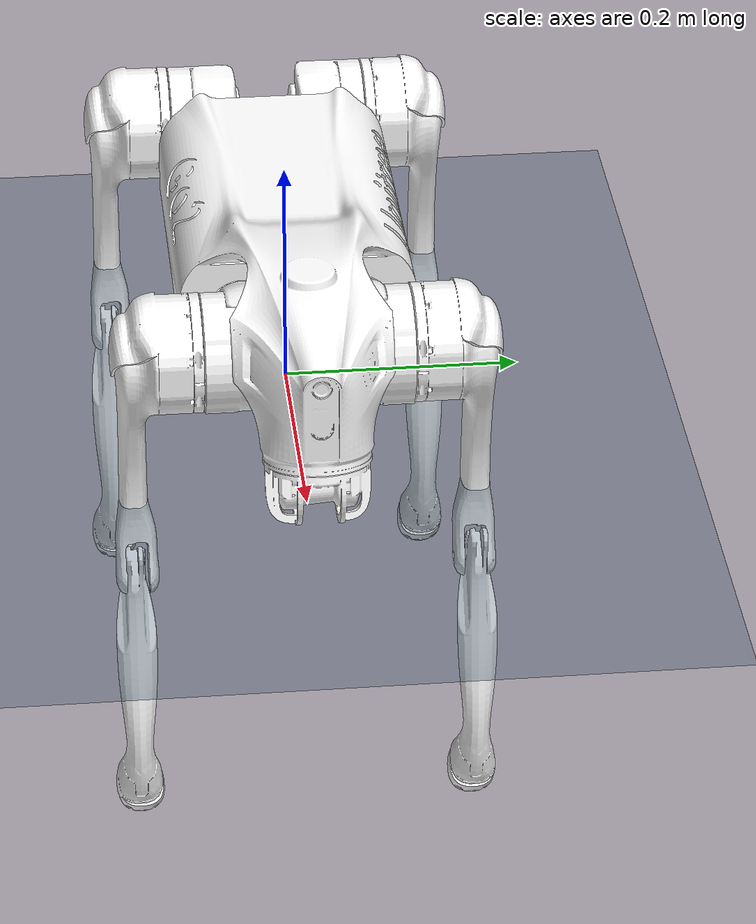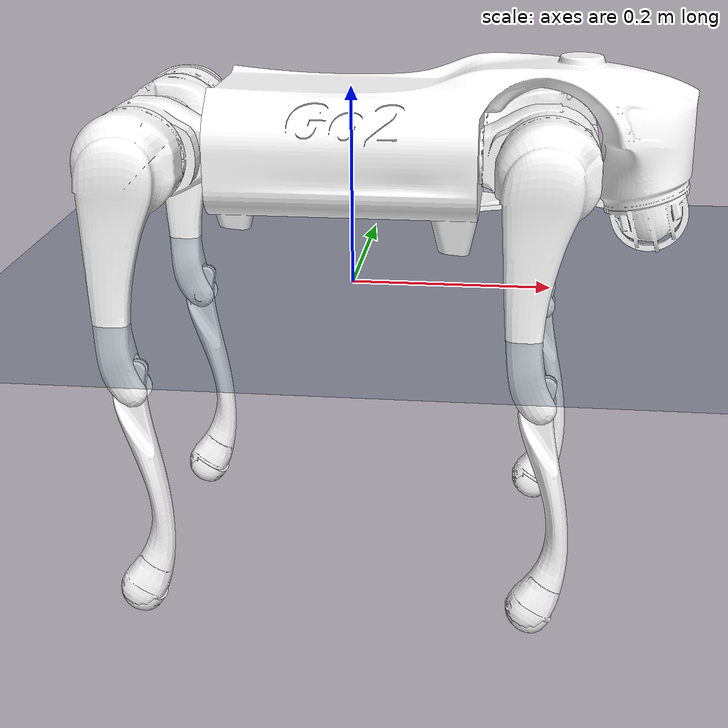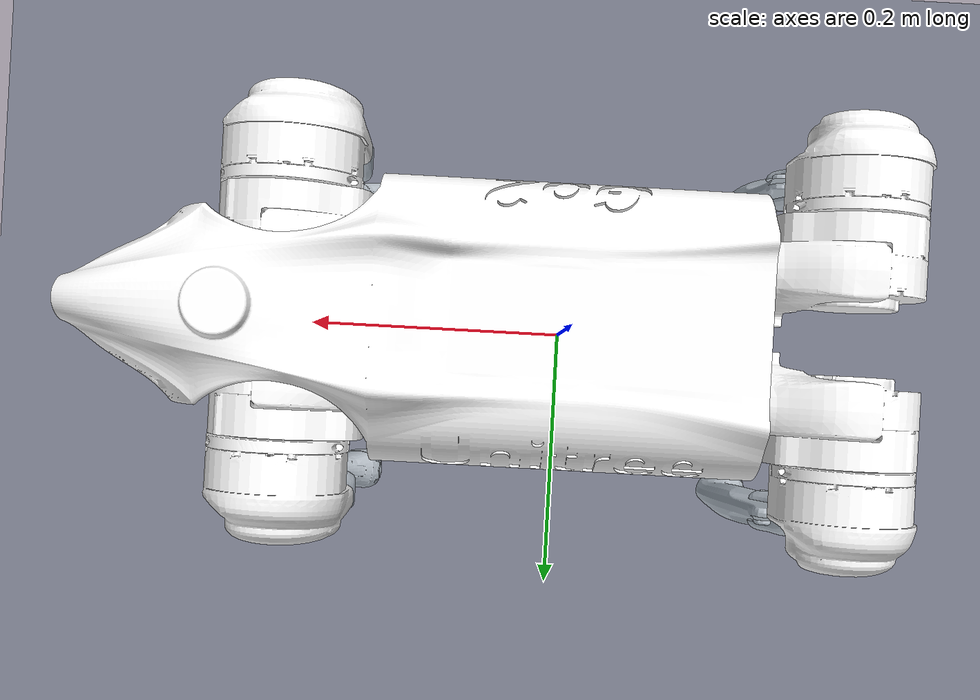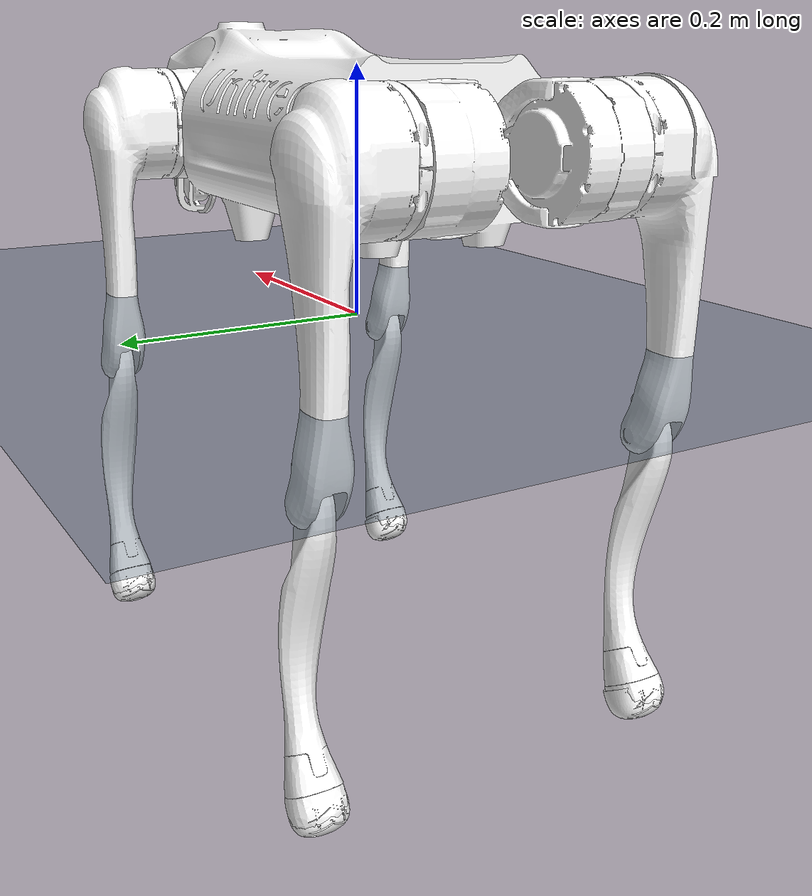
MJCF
<mujoco model="go2_description">
    <compiler angle="radian" meshdir="../meshes/" autolimits="true"/>
    <option timestep="0.001" integrator="RK4">
		<flag sensornoise="enable" />
	</option>
    <visual>
        <map force="0.1" zfar="30"/>
        <rgba haze="0.15 0.25 0.35 1"/>
        <global offwidth="2560" offheight="1440" elevation="-20" azimuth="120"/>
    </visual>
    <asset>
        <texture type="skybox" builtin="gradient" rgb1=".3 .5 .7" rgb2="0 0 0" width="32" height="512"/>
        <texture name="body" type="cube" builtin="flat" mark="cross" width="127" height="1278" rgb1="0.8 0.6 0.4" rgb2="0.8 0.6 0.4" markrgb="1 1 1" random="0.01"/>
        <material name="body" texture="body" texuniform="true" rgba="0.8 0.6 .4 1"/>
        <texture name="grid" type="2d" builtin="checker" width="512" height="512" rgb1=".1 .2 .3" rgb2=".2 .3 .4"/>
        <material name="grid" texture="grid" texrepeat="1 1" texuniform="true" reflectance=".2"/>
      </asset>
    <asset>
        <mesh name="base" file="base.stl" />
        <mesh name="hip" file="hip.stl" />
        <mesh name="thigh" file="thigh.stl" />
        <mesh name="calf" file="calf.stl" />
        <mesh name="foot" file="foot.stl" />
        <mesh name="thigh_mirror" file="thigh_mirror.stl" />
        <mesh name="calf_mirror" file="calf_mirror.stl" />
    </asset>
    <worldbody>
        <light diffuse=".7 .7 .7" mode="trackcom" pos="0 0 10" dir="0 0 -1"/>
 	<geom name="floor" type="plane" size="0 0 0.5" friction="1.0 0.005 0.0001" material="grid"/>
        <body name="base" pos="0 0 0.145">
            <inertial pos="0.0211894 0 -0.00537167" quat="-0.000544412 0.71347 -0.00173648 0.700684" mass="6.923" diaginertia="0.0244752 0.098243 0.10719" />
            <joint name="floating_base_joint" type="free" />
            <geom type="mesh" quat=" 0.707  0.707 0 0" contype="0" conaffinity="0" group="1" rgba="1 1 1 1" mesh="base" />
            <geom type="mesh" quat=" 0.707  0.707 0 0" mesh="base" />
            <site name = "site_imu" pos = "0 0 0"/>

            <body name="FL_hip" pos="0.1934 0.0465 0">
                <inertial pos="-0.0054 0.00194 -0.000105" quat="0.497014 0.499245 0.505462 0.498237" mass="0.678" diaginertia="0.00088403 0.000596003 0.000479967" />
                <joint name="FL_hip_joint" pos="0 0 0" axis="1 0 0" />
                <geom type="mesh" quat=" 0.707  0.707 0 0" contype="0" conaffinity="0" group="1" rgba="1 1 1 1" mesh="hip" />
                <geom type="mesh" quat=" 0.707  0.707 0 0" mesh="hip" />

                <body name="FL_thigh" pos="0 0.0955 0">
                    <inertial pos="-0.00374 -0.0223 -0.0327" quat="0.829533 0.0847635 -0.0200632 0.551623" mass="1.152" diaginertia="0.00594973 0.00584149 0.000878787" />
                    <joint name="FL_thigh_joint" pos="0 0 0" axis="0 -1 0"/>
                    <geom type="mesh" quat=" 0.707  0.707 0 0" contype="0" conaffinity="0" group="1" rgba="1 1 1 1" mesh="thigh" />
                    <geom type="mesh" quat=" 0.707  0.707 0 0" mesh="thigh" />

                    <body name="FL_calf" pos="0 0 -0.213">
                        <inertial pos="0.00629595 -0.000622121 -0.141417" quat="0.710672 0.00154099 -0.00450087 0.703508" mass="0.241352" diaginertia="0.0014901 0.00146356 5.31397e-05" />
                        <joint name="FL_calf_joint" pos="0 0 0" axis="0 -1 0"/>
                        <geom quat=" 0.707  0.707 0 0" type="mesh" contype="0" conaffinity="0" group="1" rgba="1 1 1 1" mesh="calf" />
                        <geom quat=" 0.707  0.707 0 0" type="mesh" mesh="calf" />
                        <geom pos="0 0 -0.213" quat=" 0.707  0.707 0 0" type="mesh" contype="0" conaffinity="0" group="1" rgba="1 1 1 1" mesh="foot" />
                        <geom pos="0 0 -0.213" quat=" 0.707  0.707 0 0" friction="0.9 0.005 0.0001" mesh="foot" />
                        <site name = "FL_site_forcesensor" pos = "0 0 -0.213"/>
                    </body>
                </body>
            </body>

            <body name="FR_hip" pos="0.1934 -0.0465 0">
                <inertial pos="-0.0054 -0.00194 -0.000105" quat="0.498237 0.505462 0.499245 0.497014" mass="0.678" diaginertia="0.00088403 0.000596003 0.000479967" />
                <joint name="FR_hip_joint" pos="0 0 0" axis="1 0 0"/>
                <geom quat=" 0.707  -0.707 0 0" type="mesh" contype="0" conaffinity="0" group="1" rgba="1 1 1 1" mesh="hip" />
                <geom quat=" 0.707  -0.707 0 0" type="mesh" mesh="hip" />

                <body name="FR_thigh" pos="0 -0.0955 0">
                    <inertial pos="-0.00374 0.0223 -0.0327" quat="0.551623 -0.0200632 0.0847635 0.829533" mass="1.152" diaginertia="0.00594973 0.00584149 0.000878787" />
                    <joint name="FR_thigh_joint" pos="0 0 0" axis="0 -1 0"/>
                    <geom type="mesh" quat=" 0.707  0.707 0 0" contype="0" conaffinity="0" group="1" rgba="1 1 1 1" mesh="thigh_mirror" />
                    <geom type="mesh" quat=" 0.707  0.707 0 0" mesh="thigh_mirror" />

                    <body name="FR_calf" pos="0 0 -0.213">
                        <inertial pos="0.00629595 0.000622121 -0.141417" quat="0.703508 -0.00450087 0.00154099 0.710672" mass="0.241352" diaginertia="0.0014901 0.00146356 5.31397e-05" />
                        <joint name="FR_calf_joint" pos="0 0 0" axis="0 -1 0"/>
                        <geom type="mesh" quat=" 0.707  0.707 0 0" contype="0" conaffinity="0" group="1" rgba="1 1 1 1" mesh="calf_mirror" />
                        <geom type="mesh" quat=" 0.707  0.707 0 0" mesh="calf_mirror" />
                        <geom pos="0 0 -0.213" quat=" 0.707  0.707 0 0" type="mesh" contype="0" conaffinity="0" group="1" rgba="1 1 1 1" mesh="foot" />
                        <geom pos="0 0 -0.213" quat=" 0.707  0.707 0 0" friction="0.9 0.005 0.0001" mesh="foot" />
                        <site name = "FR_site_forcesensor" pos = "0 0 -0.213"/>
                    </body>
                </body>
            </body>

            <body name="RL_hip" pos="-0.1934 0.0465 0">
                <inertial pos="0.0054 0.00194 -0.000105" quat="0.505462 0.498237 0.497014 0.499245" mass="0.678" diaginertia="0.00088403 0.000596003 0.000479967" />
                <joint name="RL_hip_joint" pos="0 0 0" axis="1 0 0"/>
                <geom quat=" 0 0 -0.707 0.707" type="mesh" contype="0" conaffinity="0" group="1" rgba="1 1 1 1" mesh="hip" />
                <geom quat=" 0 0 -0.707 0.707" type="mesh" mesh="hip" />

                <body name="RL_thigh" pos="0 0.0955 0">
                    <inertial pos="-0.00374 -0.0223 -0.0327" quat="0.829533 0.0847635 -0.0200632 0.551623" mass="1.152" diaginertia="0.00594973 0.00584149 0.000878787" />
                    <joint name="RL_thigh_joint" pos="0 0 0" axis="0 -1 0"/>
                    <geom type="mesh" quat=" 0.707  0.707 0 0" contype="0" conaffinity="0" group="1" rgba="1 1 1 1" mesh="thigh" />
                    <geom type="mesh" quat=" 0.707  0.707 0 0" mesh="thigh" />

                    <body name="RL_calf" pos="0 0 -0.213">
                        <inertial pos="0.00629595 -0.000622121 -0.141417" quat="0.710672 0.00154099 -0.00450087 0.703508" mass="0.241352" diaginertia="0.0014901 0.00146356 5.31397e-05" />
                        <joint name="RL_calf_joint" pos="0 0 0" axis="0 -1 0"/>
                        <geom type="mesh" quat=" 0.707  0.707 0 0"  contype="0" conaffinity="0" group="1" rgba="1 1 1 1" mesh="calf" />
                        <geom type="mesh" quat=" 0.707  0.707 0 0"  mesh="calf" />
                        <geom pos="0 0 -0.213" quat=" 0.707  0.707 0 0" type="mesh" contype="0" conaffinity="0" group="1" rgba="1 1 1 1" mesh="foot" />
                        <geom pos="0 0 -0.213" quat=" 0.707  0.707 0 0" friction="0.9 0.005 0.0001" type="mesh" mesh="foot" />
                        <site name = "RL_site_forcesensor" pos = "0 0 -0.213"/>
                    </body>
                </body>
            </body>

            <body name="RR_hip" pos="-0.1934 -0.0465 0">
                <inertial pos="0.0054 -0.00194 -0.000105" quat="0.499245 0.497014 0.498237 0.505462" mass="0.678" diaginertia="0.00088403 0.000596003 0.000479967" />
                <joint name="RR_hip_joint" pos="0 0 0" axis="1 0 0"/>
                <geom quat="0 0 0.707 0.707" type="mesh" contype="0" conaffinity="0" group="1" rgba="1 1 1 1" mesh="hip" />
                <geom quat="0 0 0.707 0.707" type="mesh" mesh="hip" />

                <body name="RR_thigh" pos="0 -0.0955 0">
                    <inertial pos="-0.00374 0.0223 -0.0327" quat="0.551623 -0.0200632 0.0847635 0.829533" mass="1.152" diaginertia="0.00594973 0.00584149 0.000878787" />
                    <joint name="RR_thigh_joint" pos="0 0 0" axis="0 -1 0"/>
                    <geom type="mesh" quat=" 0.707  0.707 0 0" contype="0" conaffinity="0" group="1" rgba="1 1 1 1" mesh="thigh_mirror" />
                    <geom type="mesh" quat=" 0.707  0.707 0 0" mesh="thigh_mirror" />

                    <body name="RR_calf" pos="0 0 -0.213">
                        <inertial pos="0.00629595 0.000622121 -0.141417" quat="0.703508 -0.00450087 0.00154099 0.710672" mass="0.241352" diaginertia="0.0014901 0.00146356 5.31397e-05" />
                        <joint name="RR_calf_joint" pos="0 0 0" axis="0 -1 0"/>
                        <geom type="mesh" quat=" 0.707  0.707 0 0" contype="0" conaffinity="0" group="1" rgba="1 1 1 1" mesh="calf_mirror" />
                        <geom type="mesh" quat=" 0.707  0.707 0 0" mesh="calf_mirror" />
                        <geom pos="0 0 -0.213" quat=" 0.707  0.707 0 0" type="mesh" contype="0" conaffinity="0" group="1" rgba="1 1 1 1" mesh="foot" />
                        <geom pos="0 0 -0.213" quat=" 0.707  0.707 0 0" type="mesh" friction="0.9 0.005 0.0001" mesh="foot" />
                        <site name = "RR_site_forcesensor" pos = "0 0 -0.213"/>
                    </body>
                </body>
            </body>
        </body>
    </worldbody>

    <actuator>
		<motor name="FR_hip_joint" joint="FR_hip_joint" gear="1" ctrllimited="true" ctrlrange="-180 180" />
		<motor name="RR_hip_joint" joint="RR_hip_joint" gear="1" ctrllimited="true" ctrlrange="-180 180" />
		<motor name="FL_hip_joint" joint="FL_hip_joint" gear="1" ctrllimited="true" ctrlrange="-180 180" />
		<motor name="RL_hip_joint" joint="RL_hip_joint" gear="1" ctrllimited="true" ctrlrange="-180 180" />

		<motor name="FR_thigh_joint" joint="FR_thigh_joint" gear="1" ctrllimited="true" ctrlrange="-180 180" />
		<motor name="RR_thigh_joint" joint="RR_thigh_joint" gear="1" ctrllimited="true" ctrlrange="-180 180" />
		<motor name="FL_thigh_joint" joint="FL_thigh_joint" gear="1" ctrllimited="true" ctrlrange="-180 180" />
		<motor name="RL_thigh_joint" joint="RL_thigh_joint" gear="1" ctrllimited="true" ctrlrange="-180 180" />

        <motor name="FR_calf_joint" joint="FR_calf_joint" gear="1" ctrllimited="true" ctrlrange="-180 180" />
		<motor name="RR_calf_joint" joint="RR_calf_joint" gear="1" ctrllimited="true" ctrlrange="-180 180" />
        <motor name="FL_calf_joint" joint="FL_calf_joint" gear="1" ctrllimited="true" ctrlrange="-180 180" />
		<motor name="RL_calf_joint" joint="RL_calf_joint" gear="1" ctrllimited="true" ctrlrange="-180 180" />
    </actuator>

    <sensor>
		<force name = "FL_forcesensor" site = "FL_site_forcesensor" cutoff = "5000.0"/>
  	    <force name = "FR_forcesensor" site = "FR_site_forcesensor" cutoff = "5000.0"/>
		<force name = "RL_forcesensor" site = "RL_site_forcesensor" cutoff = "5000.0"/>
		<force name = "RR_forcesensor" site = "RR_site_forcesensor" cutoff = "5000.0"/>

        <accelerometer name = "imu_acc" site = "site_imu"/>
        <gyro name = "imu_gyro" site = "site_imu"/>
    </sensor>

  <contact>
    <exclude body1 = "base" body2 = "FR_hip"/>
    <exclude body1 = "base" body2 = "RR_hip"/>
    <exclude body1 = "base" body2 = "FL_hip"/>
    <exclude body1 = "base" body2 = "RL_hip"/>
  </contact>
</mujoco>
